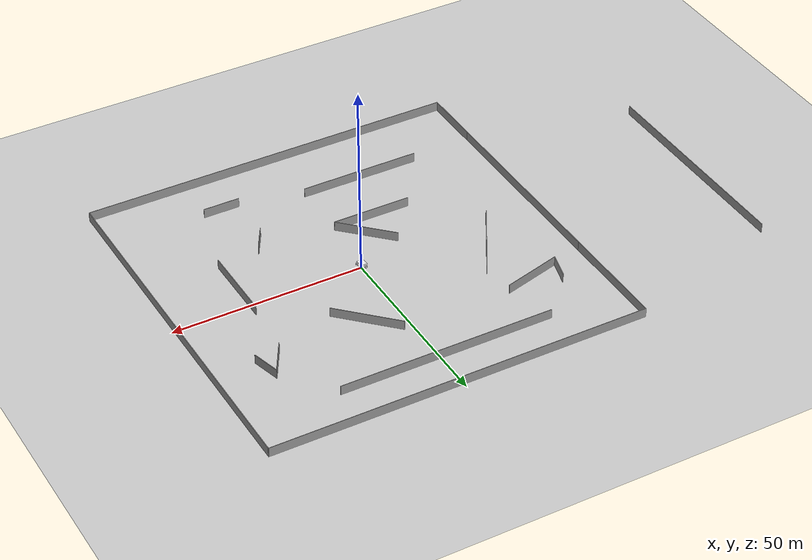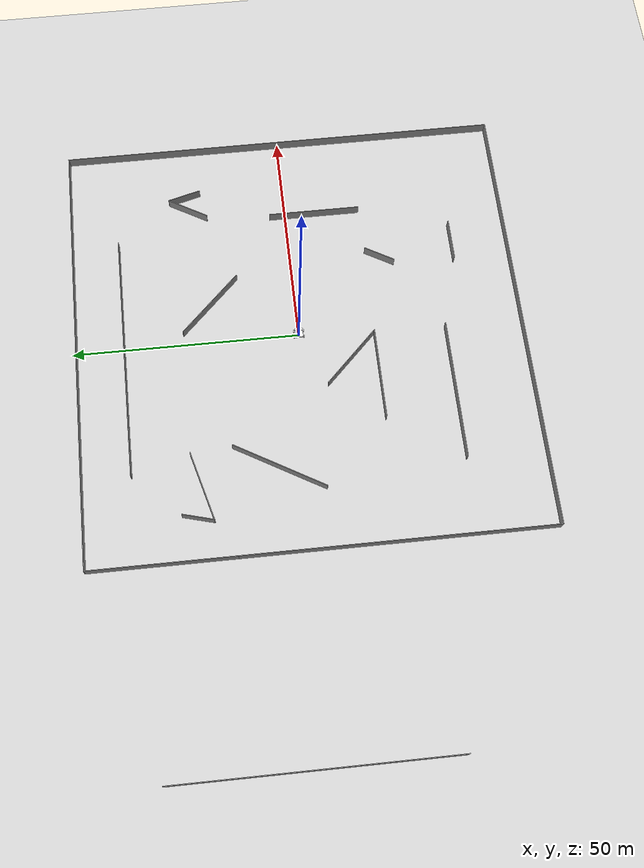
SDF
<sdf version="1.7">
 <world name="default">
  <light name="sun" type="directional">
   <pose>0 0 10 0 -0 0</pose>
   <diffuse>0.8 0.8 0.8 1</diffuse>
   <specular>0.2 0.2 0.2 1</specular>
   <attenuation>
    <range>1000</range>
    <constant>0.9</constant>
    <linear>0.01</linear>
    <quadratic>0.001</quadratic>
   </attenuation>
   <direction>-0.5 0.1 -0.9</direction>
   <spot><inner_angle>0</inner_angle><outer_angle>0</outer_angle><falloff>0</falloff></spot>
  </light>
  <model name="ground_plane">
   <static>1</static>
   <link name="link">
    <collision name="collision">
     <geometry><plane><normal>0 0 1</normal><size>100 100</size></plane></geometry>
     <surface><friction><ode><mu>100</mu><mu2>50</mu2></ode></friction></surface>
    </collision>
    <visual name="visual">
     <cast_shadows>0</cast_shadows>
     <geometry><plane><normal>0 0 1</normal><size>100 100</size></plane></geometry>
     <material>
      <script><uri>file://media/materials/scripts/gazebo.material</uri><name>Gazebo/Grey</name></script>
     </material>
    </visual>
   </link>
  </model>
  <gravity>0 0 -9.8</gravity>
  <magnetic_field>6e-06 2.3e-05 -4.2e-05</magnetic_field>
  <atmosphere type="adiabatic"/>
  <physics type="ode">
   <max_step_size>0.001</max_step_size>
   <real_time_factor>1</real_time_factor>
   <real_time_update_rate>1000</real_time_update_rate>
  </physics>
  <scene><ambient>0.4 0.4 0.4 1</ambient><background>0.7 0.7 0.7 1</background><shadows>1</shadows></scene>
  <audio><device>default</device></audio>
  <spherical_coordinates>
   <surface_model>EARTH_WGS84</surface_model>
   <latitude_deg>0</latitude_deg>
   <longitude_deg>0</longitude_deg>
   <elevation>0</elevation>
   <heading_deg>0</heading_deg>
  </spherical_coordinates>
  <model name="car">
   <link name="base_link">
    <inertial>
     <pose>1.32428 0.73996 0.124912 0 -0 0</pose>
     <mass>14637.3</mass>
     <inertia>
      <ixx>4036.66</ixx>
      <ixy>-194.61</ixy>
      <ixz>-481.364</ixz>
      <iyy>5981</iyy>
      <iyz>-18.3566</iyz>
      <izz>8818.39</izz>
     </inertia>
    </inertial>
    <collision name="base_link_collision">
     <geometry>
      <mesh>
       <scale>0.001 0.001 0.001</scale>
       <uri>file:///home/rhobtor/reactive/Reactive-Navegation/workspace_full_conected/install/car/share/car/meshes/base_link.stl</uri>
      </mesh>
     </geometry>
     <surface><friction><ode><mu>0.2</mu><mu2>0.2</mu2></ode></friction></surface>
    </collision>
    <collision name="base_link_fixed_joint_lump__suspension_front_right_1_collision_1">
     <geometry>
      <mesh>
       <scale>0.001 0.001 0.001</scale>
       <uri>file:///home/rhobtor/reactive/Reactive-Navegation/workspace_full_conected/install/car/share/car/meshes/suspension_front_right_1.stl</uri>
      </mesh>
     </geometry>
     <surface><friction><ode><mu>0.2</mu><mu2>0.2</mu2></ode></friction></surface>
    </collision>
    <collision name="base_link_fixed_joint_lump__direction_front_right_1_collision_2">
     <geometry>
      <mesh>
       <scale>0.001 0.001 0.001</scale>
       <uri>file:///home/rhobtor/reactive/Reactive-Navegation/workspace_full_conected/install/car/share/car/meshes/direction_front_right_1.stl</uri>
      </mesh>
     </geometry>
     <surface><friction><ode><mu>0.2</mu><mu2>0.2</mu2></ode></friction></surface>
    </collision>
    <collision name="base_link_fixed_joint_lump__suspension_front_left__1_collision_3">
     <geometry>
      <mesh>
       <scale>0.001 0.001 0.001</scale>
       <uri>file:///home/rhobtor/reactive/Reactive-Navegation/workspace_full_conected/install/car/share/car/meshes/suspension_front_left__1.stl</uri>
      </mesh>
     </geometry>
     <surface><friction><ode><mu>0.2</mu><mu2>0.2</mu2></ode></friction></surface>
    </collision>
    <collision name="base_link_fixed_joint_lump__direction_front_left_1_collision_4">
     <geometry>
      <mesh>
       <scale>0.001 0.001 0.001</scale>
       <uri>file:///home/rhobtor/reactive/Reactive-Navegation/workspace_full_conected/install/car/share/car/meshes/direction_front_left_1.stl</uri>
      </mesh>
     </geometry>
     <surface><friction><ode><mu>0.2</mu><mu2>0.2</mu2></ode></friction></surface>
    </collision>
    <collision name="base_link_fixed_joint_lump__suspension_back_right_1_collision_5">
     <geometry>
      <mesh>
       <scale>0.001 0.001 0.001</scale>
       <uri>file:///home/rhobtor/reactive/Reactive-Navegation/workspace_full_conected/install/car/share/car/meshes/suspension_back_right_1.stl</uri>
      </mesh>
     </geometry>
     <surface><friction><ode><mu>0.2</mu><mu2>0.2</mu2></ode></friction></surface>
    </collision>
    <collision name="base_link_fixed_joint_lump__direction_back_right_1_collision_6">
     <geometry>
      <mesh>
       <scale>0.001 0.001 0.001</scale>
       <uri>file:///home/rhobtor/reactive/Reactive-Navegation/workspace_full_conected/install/car/share/car/meshes/direction_back_right_1.stl</uri>
      </mesh>
     </geometry>
     <surface><friction><ode><mu>0.2</mu><mu2>0.2</mu2></ode></friction></surface>
    </collision>
    <collision name="base_link_fixed_joint_lump__suspension_back_left_1_collision_7">
     <geometry>
      <mesh>
       <scale>0.001 0.001 0.001</scale>
       <uri>file:///home/rhobtor/reactive/Reactive-Navegation/workspace_full_conected/install/car/share/car/meshes/suspension_back_left_1.stl</uri>
      </mesh>
     </geometry>
     <surface><friction><ode><mu>0.2</mu><mu2>0.2</mu2></ode></friction></surface>
    </collision>
    <collision name="base_link_fixed_joint_lump__direction_back_left_1_collision_8">
     <geometry>
      <mesh>
       <scale>0.001 0.001 0.001</scale>
       <uri>file:///home/rhobtor/reactive/Reactive-Navegation/workspace_full_conected/install/car/share/car/meshes/direction_back_left_1.stl</uri>
      </mesh>
     </geometry>
     <surface><friction><ode><mu>0.2</mu><mu2>0.2</mu2></ode></friction></surface>
    </collision>
    <collision name="base_link_fixed_joint_lump__chasis_1_collision_9">
     <geometry>
      <mesh>
       <scale>0.001 0.001 0.001</scale>
       <uri>file:///home/rhobtor/reactive/Reactive-Navegation/workspace_full_conected/install/car/share/car/meshes/chasis_1.stl</uri>
      </mesh>
     </geometry>
     <surface><friction><ode><mu>0.2</mu><mu2>0.2</mu2></ode></friction></surface>
    </collision>
    <collision name="base_link_fixed_joint_lump__Lidar_collision_10">
     <geometry>
      <mesh>
       <scale>0.001 0.001 0.001</scale>
       <uri>file:///home/rhobtor/reactive/Reactive-Navegation/workspace_full_conected/install/car/share/car/meshes/Lidar.stl</uri>
      </mesh>
     </geometry>
    </collision>
    <collision name="base_link_fixed_joint_lump__Camara_collision_11">
     <geometry>
      <mesh>
       <scale>0.001 0.001 0.001</scale>
       <uri>file:///home/rhobtor/reactive/Reactive-Navegation/workspace_full_conected/install/car/share/car/meshes/Camara.stl</uri>
      </mesh>
     </geometry>
    </collision>
    <visual name="base_link_visual">
     <geometry>
      <mesh>
       <scale>0.001 0.001 0.001</scale>
       <uri>file:///home/rhobtor/reactive/Reactive-Navegation/workspace_full_conected/install/car/share/car/meshes/base_link.stl</uri>
      </mesh>
     </geometry>
     <material>
      <script><name>Gazebo/White</name><uri>file://media/materials/scripts/gazebo.material</uri></script>
     </material>
    </visual>
    <visual name="base_link_fixed_joint_lump__suspension_front_right_1_visual_1">
     <geometry>
      <mesh>
       <scale>0.001 0.001 0.001</scale>
       <uri>file:///home/rhobtor/reactive/Reactive-Navegation/workspace_full_conected/install/car/share/car/meshes/suspension_front_right_1.stl</uri>
      </mesh>
     </geometry>
     <material>
      <script><name>Gazebo/White</name><uri>file://media/materials/scripts/gazebo.material</uri></script>
     </material>
    </visual>
    <visual name="base_link_fixed_joint_lump__direction_front_right_1_visual_2">
     <geometry>
      <mesh>
       <scale>0.001 0.001 0.001</scale>
       <uri>file:///home/rhobtor/reactive/Reactive-Navegation/workspace_full_conected/install/car/share/car/meshes/direction_front_right_1.stl</uri>
      </mesh>
     </geometry>
     <material>
      <script><name>Gazebo/White</name><uri>file://media/materials/scripts/gazebo.material</uri></script>
     </material>
    </visual>
    <visual name="base_link_fixed_joint_lump__suspension_front_left__1_visual_3">
     <geometry>
      <mesh>
       <scale>0.001 0.001 0.001</scale>
       <uri>file:///home/rhobtor/reactive/Reactive-Navegation/workspace_full_conected/install/car/share/car/meshes/suspension_front_left__1.stl</uri>
      </mesh>
     </geometry>
     <material>
      <script><name>Gazebo/White</name><uri>file://media/materials/scripts/gazebo.material</uri></script>
     </material>
    </visual>
    <visual name="base_link_fixed_joint_lump__direction_front_left_1_visual_4">
     <geometry>
      <mesh>
       <scale>0.001 0.001 0.001</scale>
       <uri>file:///home/rhobtor/reactive/Reactive-Navegation/workspace_full_conected/install/car/share/car/meshes/direction_front_left_1.stl</uri>
      </mesh>
     </geometry>
     <material>
      <script><name>Gazebo/White</name><uri>file://media/materials/scripts/gazebo.material</uri></script>
     </material>
    </visual>
    <visual name="base_link_fixed_joint_lump__suspension_back_right_1_visual_5">
     <geometry>
      <mesh>
       <scale>0.001 0.001 0.001</scale>
       <uri>file:///home/rhobtor/reactive/Reactive-Navegation/workspace_full_conected/install/car/share/car/meshes/suspension_back_right_1.stl</uri>
      </mesh>
     </geometry>
     <material>
      <script><name>Gazebo/White</name><uri>file://media/materials/scripts/gazebo.material</uri></script>
     </material>
    </visual>
    <visual name="base_link_fixed_joint_lump__direction_back_right_1_visual_6">
     <geometry>
      <mesh>
       <scale>0.001 0.001 0.001</scale>
       <uri>file:///home/rhobtor/reactive/Reactive-Navegation/workspace_full_conected/install/car/share/car/meshes/direction_back_right_1.stl</uri>
      </mesh>
     </geometry>
     <material>
      <script><name>Gazebo/White</name><uri>file://media/materials/scripts/gazebo.material</uri></script>
     </material>
    </visual>
    <visual name="base_link_fixed_joint_lump__suspension_back_left_1_visual_7">
     <geometry>
      <mesh>
       <scale>0.001 0.001 0.001</scale>
       <uri>file:///home/rhobtor/reactive/Reactive-Navegation/workspace_full_conected/install/car/share/car/meshes/suspension_back_left_1.stl</uri>
      </mesh>
     </geometry>
     <material>
      <script><name>Gazebo/White</name><uri>file://media/materials/scripts/gazebo.material</uri></script>
     </material>
    </visual>
    <visual name="base_link_fixed_joint_lump__direction_back_left_1_visual_8">
     <geometry>
      <mesh>
       <scale>0.001 0.001 0.001</scale>
       <uri>file:///home/rhobtor/reactive/Reactive-Navegation/workspace_full_conected/install/car/share/car/meshes/direction_back_left_1.stl</uri>
      </mesh>
     </geometry>
     <material>
      <script><name>Gazebo/White</name><uri>file://media/materials/scripts/gazebo.material</uri></script>
     </material>
    </visual>
    <visual name="base_link_fixed_joint_lump__chasis_1_visual_9">
     <geometry>
      <mesh>
       <scale>0.001 0.001 0.001</scale>
       <uri>file:///home/rhobtor/reactive/Reactive-Navegation/workspace_full_conected/install/car/share/car/meshes/chasis_1.stl</uri>
      </mesh>
     </geometry>
     <material>
      <script><name>Gazebo/White</name><uri>file://media/materials/scripts/gazebo.material</uri></script>
     </material>
    </visual>
    <visual name="base_link_fixed_joint_lump__Lidar_visual_10">
     <geometry>
      <mesh>
       <scale>0.001 0.001 0.001</scale>
       <uri>file:///home/rhobtor/reactive/Reactive-Navegation/workspace_full_conected/install/car/share/car/meshes/Lidar.stl</uri>
      </mesh>
     </geometry>
    </visual>
    <visual name="base_link_fixed_joint_lump__Camara_visual_11">
     <geometry>
      <mesh>
       <scale>0.001 0.001 0.001</scale>
       <uri>file:///home/rhobtor/reactive/Reactive-Navegation/workspace_full_conected/install/car/share/car/meshes/Camara.stl</uri>
      </mesh>
     </geometry>
    </visual>
    <self_collide>1</self_collide>
    <self_collide>1</self_collide>
    <self_collide>1</self_collide>
    <self_collide>1</self_collide>
    <self_collide>1</self_collide>
    <self_collide>1</self_collide>
    <self_collide>1</self_collide>
    <self_collide>1</self_collide>
    <self_collide>1</self_collide>
    <self_collide>1</self_collide>
    <sensor name="Lidar" type="gpu_ray">
     <visualize>0</visualize>
     <update_rate>10</update_rate>
     <ray>
      <scan>
       <horizontal>
        <samples>360</samples>
        <min_angle>-3.14</min_angle>
        <max_angle>3.14</max_angle>
        <resolution>1</resolution>
       </horizontal>
       <vertical><samples>16</samples><min_angle>-0.523599</min_angle><max_angle>0.523599</max_angle></vertical>
      </scan>
      <range><min>0.3</min><max>12</max><resolution>0.01</resolution></range>
      <noise><type>gaussian</type><mean>0</mean><stddev>0.01</stddev></noise>
     </ray>
     <plugin name="lidar_controller" filename="libgazebo_ros_ray_sensor.so">
      <ros><argument>use_sim_time:=true</argument><argument>~/out:=/scan_cloud</argument></ros>
      <frame_name>Lidar</frame_name>
      <output_type>sensor_msgs/PointCloud2</output_type>
     </plugin>
     <pose>1.85 0.75 0.65 0 -0 0</pose>
    </sensor>
    <sensor name="depth_camera" type="depth">
     <visualize>1</visualize>
     <update_rate>100</update_rate>
     <camera>
      <horizontal_fov>2</horizontal_fov>
      <image><width>640</width><height>480</height><format>R8G8B8</format></image>
      <clip><near>0.1</near><far>50</far></clip>
     </camera>
     <plugin name="depth_camera_controller" filename="libgazebo_ros_camera.so">
      <ros><argument>use_sim_time:=true</argument></ros>
      <frame_name>camera_optical_frame</frame_name>
      <publish_tf>1</publish_tf>
     </plugin>
     <pose>2.17508 0.75 0.43922 0 -0 0</pose>
    </sensor>
   </link>
   <joint name="front_right_wheel_joint" type="revolute">
    <pose relative_to="base_link">1.925 -0.25 -0.45 0 -0 0</pose>
    <parent>base_link</parent>
    <child>rim_front_right_1</child>
    <axis>
     <xyz>0 -1 0</xyz>
     <limit><lower>-1e+16</lower><upper>1e+16</upper></limit>
     <dynamics><spring_reference>0</spring_reference><spring_stiffness>0</spring_stiffness></dynamics>
    </axis>
   </joint>
   <link name="rim_front_right_1">
    <pose relative_to="front_right_wheel_joint">0 0 0 0 -0 0</pose>
    <inertial>
     <pose>-0 -0.04659 -1e-06 0 -0 0</pose>
     <mass>108.077</mass>
     <inertia>
      <ixx>4.92257</ixx>
      <ixy>-9.53454e-07</ixy>
      <ixz>-3.00006e-06</ixz>
      <iyy>8.91914</iyy>
      <iyz>-2.71445e-06</iyz>
      <izz>4.92257</izz>
     </inertia>
    </inertial>
    <collision name="rim_front_right_1_collision">
     <pose>-1.925 0.25 0.45 0 -0 0</pose>
     <geometry>
      <mesh>
       <scale>0.001 0.001 0.001</scale>
       <uri>file:///home/rhobtor/reactive/Reactive-Navegation/workspace_full_conected/install/car/share/car/meshes/rim_front_right_1.stl</uri>
      </mesh>
     </geometry>
     <surface><friction><ode><mu>5</mu><mu2>5</mu2></ode></friction></surface>
    </collision>
    <collision name="rim_front_right_1_fixed_joint_lump__tire_front_right_1_collision_1">
     <pose>-1.925 0.25 0.45 0 -0 0</pose>
     <geometry>
      <mesh>
       <scale>0.001 0.001 0.001</scale>
       <uri>file:///home/rhobtor/reactive/Reactive-Navegation/workspace_full_conected/install/car/share/car/meshes/tire_front_right_1.stl</uri>
      </mesh>
     </geometry>
     <surface><friction><ode><mu>5</mu><mu2>5</mu2></ode></friction></surface>
    </collision>
    <visual name="rim_front_right_1_visual">
     <pose>-1.925 0.25 0.45 0 -0 0</pose>
     <geometry>
      <mesh>
       <scale>0.001 0.001 0.001</scale>
       <uri>file:///home/rhobtor/reactive/Reactive-Navegation/workspace_full_conected/install/car/share/car/meshes/rim_front_right_1.stl</uri>
      </mesh>
     </geometry>
     <material>
      <script><name>Gazebo/White</name><uri>file://media/materials/scripts/gazebo.material</uri></script>
     </material>
    </visual>
    <visual name="rim_front_right_1_fixed_joint_lump__tire_front_right_1_visual_1">
     <pose>-1.925 0.25 0.45 0 -0 0</pose>
     <geometry>
      <mesh>
       <scale>0.001 0.001 0.001</scale>
       <uri>file:///home/rhobtor/reactive/Reactive-Navegation/workspace_full_conected/install/car/share/car/meshes/tire_front_right_1.stl</uri>
      </mesh>
     </geometry>
     <material>
      <script><name>Gazebo/White</name><uri>file://media/materials/scripts/gazebo.material</uri></script>
     </material>
    </visual>
    <self_collide>1</self_collide>
    <self_collide>1</self_collide>
   </link>
   <joint name="front_left_wheel_joint" type="revolute">
    <pose relative_to="base_link">1.925 1.75 -0.45 0 -0 0</pose>
    <parent>base_link</parent>
    <child>rim_front_left_1</child>
    <axis>
     <xyz>0 1 0</xyz>
     <limit><lower>-1e+16</lower><upper>1e+16</upper></limit>
     <dynamics><spring_reference>0</spring_reference><spring_stiffness>0</spring_stiffness></dynamics>
    </axis>
   </joint>
   <link name="rim_front_left_1">
    <pose relative_to="front_left_wheel_joint">0 0 0 0 -0 0</pose>
    <inertial>
     <pose>-0 0.04659 1e-06 0 -0 0</pose>
     <mass>108.077</mass>
     <inertia>
      <ixx>4.92257</ixx>
      <ixy>9.53454e-07</ixy>
      <ixz>3.00006e-06</ixz>
      <iyy>8.91914</iyy>
      <iyz>-2.71445e-06</iyz>
      <izz>4.92257</izz>
     </inertia>
    </inertial>
    <collision name="rim_front_left_1_collision">
     <pose>-1.925 -1.75 0.45 0 -0 0</pose>
     <geometry>
      <mesh>
       <scale>0.001 0.001 0.001</scale>
       <uri>file:///home/rhobtor/reactive/Reactive-Navegation/workspace_full_conected/install/car/share/car/meshes/rim_front_left_1.stl</uri>
      </mesh>
     </geometry>
     <surface><friction><ode><mu>5</mu><mu2>5</mu2></ode></friction></surface>
    </collision>
    <collision name="rim_front_left_1_fixed_joint_lump__tire_front_left_1_collision_1">
     <pose>-1.925 -1.75 0.45 0 -0 0</pose>
     <geometry>
      <mesh>
       <scale>0.001 0.001 0.001</scale>
       <uri>file:///home/rhobtor/reactive/Reactive-Navegation/workspace_full_conected/install/car/share/car/meshes/tire_front_left_1.stl</uri>
      </mesh>
     </geometry>
     <surface><friction><ode><mu>5</mu><mu2>5</mu2></ode></friction></surface>
    </collision>
    <visual name="rim_front_left_1_visual">
     <pose>-1.925 -1.75 0.45 0 -0 0</pose>
     <geometry>
      <mesh>
       <scale>0.001 0.001 0.001</scale>
       <uri>file:///home/rhobtor/reactive/Reactive-Navegation/workspace_full_conected/install/car/share/car/meshes/rim_front_left_1.stl</uri>
      </mesh>
     </geometry>
     <material>
      <script><name>Gazebo/White</name><uri>file://media/materials/scripts/gazebo.material</uri></script>
     </material>
    </visual>
    <visual name="rim_front_left_1_fixed_joint_lump__tire_front_left_1_visual_1">
     <pose>-1.925 -1.75 0.45 0 -0 0</pose>
     <geometry>
      <mesh>
       <scale>0.001 0.001 0.001</scale>
       <uri>file:///home/rhobtor/reactive/Reactive-Navegation/workspace_full_conected/install/car/share/car/meshes/tire_front_left_1.stl</uri>
      </mesh>
     </geometry>
     <material>
      <script><name>Gazebo/White</name><uri>file://media/materials/scripts/gazebo.material</uri></script>
     </material>
    </visual>
    <self_collide>1</self_collide>
    <self_collide>1</self_collide>
   </link>
   <joint name="back_right_wheel_joint" type="revolute">
    <pose relative_to="base_link">0.58 -0.25 -0.45 0 -0 0</pose>
    <parent>base_link</parent>
    <child>rim_back_right_1</child>
    <axis>
     <xyz>0 -1 0</xyz>
     <limit><lower>-1e+16</lower><upper>1e+16</upper></limit>
     <dynamics><spring_reference>0</spring_reference><spring_stiffness>0</spring_stiffness></dynamics>
    </axis>
   </joint>
   <link name="rim_back_right_1">
    <pose relative_to="back_right_wheel_joint">0 0 0 0 -0 0</pose>
    <inertial>
     <pose>-0 -0.04659 -1e-06 0 -0 0</pose>
     <mass>108.077</mass>
     <inertia>
      <ixx>4.92257</ixx>
      <ixy>-9.53454e-07</ixy>
      <ixz>-3.00006e-06</ixz>
      <iyy>8.91914</iyy>
      <iyz>-2.71445e-06</iyz>
      <izz>4.92257</izz>
     </inertia>
    </inertial>
    <collision name="rim_back_right_1_collision">
     <pose>-0.58 0.25 0.45 0 -0 0</pose>
     <geometry>
      <mesh>
       <scale>0.001 0.001 0.001</scale>
       <uri>file:///home/rhobtor/reactive/Reactive-Navegation/workspace_full_conected/install/car/share/car/meshes/rim_back_right_1.stl</uri>
      </mesh>
     </geometry>
     <surface><friction><ode><mu>5</mu><mu2>5</mu2></ode></friction></surface>
    </collision>
    <collision name="rim_back_right_1_fixed_joint_lump__tire_back_right_1_collision_1">
     <pose>-0.58 0.25 0.45 0 -0 0</pose>
     <geometry>
      <mesh>
       <scale>0.001 0.001 0.001</scale>
       <uri>file:///home/rhobtor/reactive/Reactive-Navegation/workspace_full_conected/install/car/share/car/meshes/tire_back_right_1.stl</uri>
      </mesh>
     </geometry>
     <surface><friction><ode><mu>5</mu><mu2>5</mu2></ode></friction></surface>
    </collision>
    <visual name="rim_back_right_1_visual">
     <pose>-0.58 0.25 0.45 0 -0 0</pose>
     <geometry>
      <mesh>
       <scale>0.001 0.001 0.001</scale>
       <uri>file:///home/rhobtor/reactive/Reactive-Navegation/workspace_full_conected/install/car/share/car/meshes/rim_back_right_1.stl</uri>
      </mesh>
     </geometry>
     <material>
      <script><name>Gazebo/White</name><uri>file://media/materials/scripts/gazebo.material</uri></script>
     </material>
    </visual>
    <visual name="rim_back_right_1_fixed_joint_lump__tire_back_right_1_visual_1">
     <pose>-0.58 0.25 0.45 0 -0 0</pose>
     <geometry>
      <mesh>
       <scale>0.001 0.001 0.001</scale>
       <uri>file:///home/rhobtor/reactive/Reactive-Navegation/workspace_full_conected/install/car/share/car/meshes/tire_back_right_1.stl</uri>
      </mesh>
     </geometry>
     <material>
      <script><name>Gazebo/White</name><uri>file://media/materials/scripts/gazebo.material</uri></script>
     </material>
    </visual>
    <self_collide>1</self_collide>
    <self_collide>1</self_collide>
   </link>
   <joint name="back_left_wheel_joint" type="revolute">
    <pose relative_to="base_link">0.58 1.75 -0.45 0 -0 0</pose>
    <parent>base_link</parent>
    <child>rim_back_left_1</child>
    <axis>
     <xyz>0 1 0</xyz>
     <limit><lower>-1e+16</lower><upper>1e+16</upper></limit>
     <dynamics><spring_reference>0</spring_reference><spring_stiffness>0</spring_stiffness></dynamics>
    </axis>
   </joint>
   <link name="rim_back_left_1">
    <pose relative_to="back_left_wheel_joint">0 0 0 0 -0 0</pose>
    <inertial>
     <pose>-0 0.04659 1e-06 0 -0 0</pose>
     <mass>108.077</mass>
     <inertia>
      <ixx>4.92257</ixx>
      <ixy>9.53454e-07</ixy>
      <ixz>3.00006e-06</ixz>
      <iyy>8.91914</iyy>
      <iyz>-2.71445e-06</iyz>
      <izz>4.92257</izz>
     </inertia>
    </inertial>
    <collision name="rim_back_left_1_collision">
     <pose>-0.58 -1.75 0.45 0 -0 0</pose>
     <geometry>
      <mesh>
       <scale>0.001 0.001 0.001</scale>
       <uri>file:///home/rhobtor/reactive/Reactive-Navegation/workspace_full_conected/install/car/share/car/meshes/rim_back_left_1.stl</uri>
      </mesh>
     </geometry>
     <surface><friction><ode><mu>5</mu><mu2>5</mu2></ode></friction></surface>
    </collision>
    <collision name="rim_back_left_1_fixed_joint_lump__tire_back_left_1_collision_1">
     <pose>-0.58 -1.75 0.45 0 -0 0</pose>
     <geometry>
      <mesh>
       <scale>0.001 0.001 0.001</scale>
       <uri>file:///home/rhobtor/reactive/Reactive-Navegation/workspace_full_conected/install/car/share/car/meshes/tire_back_left_1.stl</uri>
      </mesh>
     </geometry>
     <surface><friction><ode><mu>5</mu><mu2>5</mu2></ode></friction></surface>
    </collision>
    <visual name="rim_back_left_1_visual">
     <pose>-0.58 -1.75 0.45 0 -0 0</pose>
     <geometry>
      <mesh>
       <scale>0.001 0.001 0.001</scale>
       <uri>file:///home/rhobtor/reactive/Reactive-Navegation/workspace_full_conected/install/car/share/car/meshes/rim_back_left_1.stl</uri>
      </mesh>
     </geometry>
     <material>
      <script><name>Gazebo/White</name><uri>file://media/materials/scripts/gazebo.material</uri></script>
     </material>
    </visual>
    <visual name="rim_back_left_1_fixed_joint_lump__tire_back_left_1_visual_1">
     <pose>-0.58 -1.75 0.45 0 -0 0</pose>
     <geometry>
      <mesh>
       <scale>0.001 0.001 0.001</scale>
       <uri>file:///home/rhobtor/reactive/Reactive-Navegation/workspace_full_conected/install/car/share/car/meshes/tire_back_left_1.stl</uri>
      </mesh>
     </geometry>
     <material>
      <script><name>Gazebo/White</name><uri>file://media/materials/scripts/gazebo.material</uri></script>
     </material>
    </visual>
    <self_collide>1</self_collide>
    <self_collide>1</self_collide>
   </link>
   <plugin name="control" filename="libgazebo_ros2_control.so"/>
   <plugin name="imu_controller" filename="libhector_gazebo_ros_imu.so">
    <robotNamespace>car</robotNamespace>
    <updateRate>50.0</updateRate>
    <bodyName>base_link</bodyName>
    <topicName>imu/data</topicName>
    <accelDrift>0.005 0.005 0.005</accelDrift>
    <accelGaussianNoise>0.005 0.005 0.005</accelGaussianNoise>
    <rateDrift>0.005 0.005 0.005</rateDrift>
    <rateGaussianNoise>0.005 0.005 0.005</rateGaussianNoise>
    <headingDrift>0.005</headingDrift>
    <headingGaussianNoise>0.005</headingGaussianNoise>
   </plugin>
   <plugin name="gps_controller" filename="libhector_gazebo_ros_gps.so">
    <robotNamespace>car</robotNamespace>
    <updateRate>50</updateRate>
    <bodyName>base_link</bodyName>
    <frameId>base_link</frameId>
    <topicName>navsat/fix</topicName>
    <velocityTopicName>navsat/vel</velocityTopicName>
    <referenceLatitude>49.9</referenceLatitude>
    <referenceLongitude>8.9</referenceLongitude>
    <referenceHeading>0</referenceHeading>
    <referenceAltitude>0</referenceAltitude>
    <drift>0.0001 0.0001 0.0001</drift>
   </plugin>
   <plugin name="gazebo_ros_diff_drive_multi_wheel" filename="libdrive_plugin.so">
    <robotNamespace>/car</robotNamespace>
    <leftJoints>front_left_wheel_joint back_left_wheel_joint</leftJoints>
    <rightJoints>front_right_wheel_joint back_right_wheel_joint</rightJoints>
    <wheelSeparation>0.34</wheelSeparation>
    <wheelDiameter>0.15</wheelDiameter>
    <torque>5.0</torque>
    <commandTopic>cmd_vel</commandTopic>
    <odometryTopic>odom</odometryTopic>
    <odometryFrame>odom</odometryFrame>
    <robotBaseFrame>base_link</robotBaseFrame>
    <updateRate>100</updateRate>
    <publishOdometryTf>1</publishOdometryTf>
    <publishOdometryMsg>1</publishOdometryMsg>
    <lidarLink>lidar_footprint</lidarLink>
    <lidarPose><x>0.6</x><y>0.0</y><z>1.05</z></lidarPose>
   </plugin>
   <static>0</static>
   <plugin name="joint_state_publisher_plugin" filename="libjoints_plugin.so">
    <robotNamespace>car</robotNamespace>
    <updateRate>50.0</updateRate>
   </plugin>
   <pose>0.004453 0.01916 0.819671 0 -3e-06 0.000334</pose>
  </model>
  <model name="World_simple_objects">
   <pose>-21.2576 -0.244011 0 0 -0 0</pose>
   <link name="Wall_11">
    <collision name="Wall_11_Collision">
     <geometry><box><size>31.25 0.15 2.5</size></box></geometry>
     <pose>0 0 1.25 0 -0 0</pose>
    </collision>
    <visual name="Wall_11_Visual">
     <pose>0 0 1.25 0 -0 0</pose>
     <geometry><box><size>31.25 0.15 2.5</size></box></geometry>
     <material>
      <script><uri>file://media/materials/scripts/gazebo.material</uri><name>Gazebo/Grey</name></script>
      <ambient>1 1 1 1</ambient>
     </material>
     <meta><layer>0</layer></meta>
    </visual>
    <pose>4.37429 -32.0702 0 0 -0 3.14159</pose>
   </link>
   <link name="Wall_13">
    <collision name="Wall_13_Collision">
     <geometry><box><size>55.75 0.15 2.5</size></box></geometry>
     <pose>0 0 1.25 0 -0 0</pose>
    </collision>
    <visual name="Wall_13_Visual">
     <pose>0 0 1.25 0 -0 0</pose>
     <geometry><box><size>55.75 0.15 2.5</size></box></geometry>
     <material>
      <script><uri>file://media/materials/scripts/gazebo.material</uri><name>Gazebo/Grey</name></script>
      <ambient>1 1 1 1</ambient>
     </material>
     <meta><layer>0</layer></meta>
    </visual>
    <pose>19.414 38.7055 0 0 -0 0</pose>
   </link>
   <link name="Wall_15">
    <collision name="Wall_15_Collision">
     <geometry><box><size>20.5 0.15 2.5</size></box></geometry>
     <pose>0 0 1.25 0 -0 0</pose>
    </collision>
    <visual name="Wall_15_Visual">
     <pose>0 0 1.25 0 -0 0</pose>
     <geometry><box><size>20.5 0.15 2.5</size></box></geometry>
     <material>
      <script><uri>file://media/materials/scripts/gazebo.material</uri><name>Gazebo/Grey</name></script>
      <ambient>1 1 1 1</ambient>
     </material>
     <meta><layer>0</layer></meta>
    </visual>
    <pose>51.1973 -6.36355 0 0 -0 -1.5708</pose>
   </link>
   <link name="Wall_17">
    <collision name="Wall_17_Collision">
     <geometry><box><size>22 0.15 2.5</size></box></geometry>
     <pose>0 0 1.25 0 -0 0</pose>
    </collision>
    <visual name="Wall_17_Visual">
     <pose>0 0 1.25 0 -0 0</pose>
     <geometry><box><size>22 0.15 2.5</size></box></geometry>
     <material>
      <script><uri>file://media/materials/scripts/gazebo.material</uri><name>Gazebo/Grey</name></script>
      <ambient>1 1 1 1</ambient>
     </material>
     <meta><layer>0</layer></meta>
    </visual>
    <pose>-9.23985 7.51771 0 0 -0 -2.0944</pose>
   </link>
   <link name="Wall_19">
    <collision name="Wall_19_Collision">
     <geometry><box><size>18.25 0.15 2.5</size></box></geometry>
     <pose>0 0 1.25 0 -0 0</pose>
    </collision>
    <visual name="Wall_19_Visual">
     <pose>0 0 1.25 0 -0 0</pose>
     <geometry><box><size>18.25 0.15 2.5</size></box></geometry>
     <material>
      <script><uri>file://media/materials/scripts/gazebo.material</uri><name>Gazebo/Grey</name></script>
      <ambient>1 1 1 1</ambient>
     </material>
     <meta><layer>0</layer></meta>
    </visual>
    <pose>29.9571 19.168 0 0 -0 -0.785398</pose>
   </link>
   <link name="Wall_2">
    <collision name="Wall_2_Collision">
     <geometry><box><size>58.75 0.15 2.5</size></box></geometry>
     <pose>0 0 1.25 0 -0 0</pose>
    </collision>
    <visual name="Wall_2_Visual">
     <pose>0 0 1.25 0 -0 0</pose>
     <geometry><box><size>58.75 0.15 2.5</size></box></geometry>
     <material>
      <script><uri>file://media/materials/scripts/gazebo.material</uri><name>Gazebo/Grey</name></script>
      <ambient>1 1 1 1</ambient>
     </material>
     <meta><layer>0</layer></meta>
    </visual>
    <pose>-70.5807 6.45107 0 0 -0 1.5708</pose>
   </link>
   <link name="Wall_21">
    <collision name="Wall_21_Collision">
     <geometry><box><size>9.5 0.15 2.5</size></box></geometry>
     <pose>0 0 1.25 0 -0 0</pose>
    </collision>
    <visual name="Wall_21_Visual">
     <pose>0 0 1.25 0 -0 0</pose>
     <geometry><box><size>9.5 0.15 2.5</size></box></geometry>
     <material>
      <script><uri>file://media/materials/scripts/gazebo.material</uri><name>Gazebo/Grey</name></script>
      <ambient>1 1 1 1</ambient>
     </material>
     <meta><layer>0</layer></meta>
    </visual>
    <pose>40.744 -36.5531 0 0 -0 3.14159</pose>
   </link>
   <link name="Wall_23">
    <collision name="Wall_23_Collision">
     <geometry><box><size>7.5 0.15 2.5</size></box></geometry>
     <pose>0 0 1.25 0 -0 0</pose>
    </collision>
    <visual name="Wall_23_Visual">
     <pose>0 0 1.25 0 -0 0</pose>
     <geometry><box><size>7.5 0.15 2.5</size></box></geometry>
     <material>
      <script><uri>file://media/materials/scripts/gazebo.material</uri><name>Gazebo/Grey</name></script>
      <ambient>1 1 1 1</ambient>
     </material>
     <meta><layer>0</layer></meta>
    </visual>
    <pose>58.1752 23.0028 0 0 -0 1.8326</pose>
   </link>
   <link name="Wall_24">
    <collision name="Wall_24_Collision">
     <geometry><box><size>9.75 0.15 2.5</size></box></geometry>
     <pose>0 0 1.25 0 -0 0</pose>
    </collision>
    <visual name="Wall_24_Visual">
     <pose>0 0 1.25 0 -0 0</pose>
     <geometry><box><size>9.75 0.15 2.5</size></box></geometry>
     <material>
      <script><uri>file://media/materials/scripts/gazebo.material</uri><name>Gazebo/Grey</name></script>
      <ambient>1 1 1 1</ambient>
     </material>
     <meta><layer>0</layer></meta>
    </visual>
    <pose>54.824 22.3956 0 0 -0 -2.0944</pose>
   </link>
   <link name="Wall_26">
    <collision name="Wall_26_Collision">
     <geometry><box><size>16.25 0.15 2.5</size></box></geometry>
     <pose>0 0 1.25 0 -0 0</pose>
    </collision>
    <visual name="Wall_26_Visual">
     <pose>0 0 1.25 0 -0 0</pose>
     <geometry><box><size>16.25 0.15 2.5</size></box></geometry>
     <material>
      <script><uri>file://media/materials/scripts/gazebo.material</uri><name>Gazebo/Grey</name></script>
      <ambient>1 1 1 1</ambient>
     </material>
     <meta><layer>0</layer></meta>
    </visual>
    <pose>14.152 -10.5706 0 0 -0 -0.785398</pose>
   </link>
   <link name="Wall_27">
    <collision name="Wall_27_Collision">
     <geometry><box><size>20.5 0.15 2.5</size></box></geometry>
     <pose>0 0 1.25 0 -0 0</pose>
    </collision>
    <visual name="Wall_27_Visual">
     <pose>0 0 1.25 0 -0 0</pose>
     <geometry><box><size>20.5 0.15 2.5</size></box></geometry>
     <material>
      <script><uri>file://media/materials/scripts/gazebo.material</uri><name>Gazebo/Grey</name></script>
      <ambient>1 1 1 1</ambient>
     </material>
     <meta><layer>0</layer></meta>
    </visual>
    <pose>9.66918 -16.2628 0 0 -0 3.14159</pose>
   </link>
   <link name="Wall_29">
    <collision name="Wall_29_Collision">
     <geometry><box><size>7.25 0.15 2.5</size></box></geometry>
     <pose>0 0 1.25 0 -0 0</pose>
    </collision>
    <visual name="Wall_29_Visual">
     <pose>0 0 1.25 0 -0 0</pose>
     <geometry><box><size>7.25 0.15 2.5</size></box></geometry>
     <material>
      <script><uri>file://media/materials/scripts/gazebo.material</uri><name>Gazebo/Grey</name></script>
      <ambient>1 1 1 1</ambient>
     </material>
     <meta><layer>0</layer></meta>
    </visual>
    <pose>38.5737 -19.8379 0 0 -0 1.0472</pose>
   </link>
   <link name="Wall_31">
    <collision name="Wall_31_Collision">
     <geometry><box><size>7 0.15 2.5</size></box></geometry>
     <pose>0 0 1.25 0 -0 0</pose>
    </collision>
    <visual name="Wall_31_Visual">
     <pose>0 0 1.25 0 -0 0</pose>
     <geometry><box><size>7 0.15 2.5</size></box></geometry>
     <material>
      <script><uri>file://media/materials/scripts/gazebo.material</uri><name>Gazebo/Grey</name></script>
      <ambient>1 1 1 1</ambient>
     </material>
     <meta><layer>0</layer></meta>
    </visual>
    <pose>-18.7619 25.3048 0 0 -0 -1.8326</pose>
   </link>
   <link name="Wall_32">
    <collision name="Wall_32_Collision">
     <geometry><box><size>15.75 0.15 2.5</size></box></geometry>
     <pose>0 0 1.25 0 -0 0</pose>
    </collision>
    <visual name="Wall_32_Visual">
     <pose>0 0 1.25 0 -0 0</pose>
     <geometry><box><size>15.75 0.15 2.5</size></box></geometry>
     <material>
      <script><uri>file://media/materials/scripts/gazebo.material</uri><name>Gazebo/Grey</name></script>
      <ambient>1 1 1 1</ambient>
     </material>
     <meta><layer>0</layer></meta>
    </visual>
    <pose>-12.1141 24.0153 0 0 -0 0.261799</pose>
   </link>
   <link name="Wall_4">
    <collision name="Wall_4_Collision">
     <geometry><box><size>53.5 0.15 2.5</size></box></geometry>
     <pose>0 0 1.25 0 -0 0</pose>
    </collision>
    <visual name="Wall_4_Visual">
     <pose>0 0 1.25 0 -0 0</pose>
     <geometry><box><size>53.5 0.15 2.5</size></box></geometry>
     <material>
      <script><uri>file://media/materials/scripts/gazebo.material</uri><name>Gazebo/Grey</name></script>
      <ambient>1 1 1 1</ambient>
     </material>
     <meta><layer>0</layer></meta>
    </visual>
    <pose>-27.7692 -6.9 0 0 -0 -1.5708</pose>
   </link>
   <link name="Wall_5">
    <collision name="Wall_5_Collision">
     <geometry><box><size>15.75 0.15 2.5</size></box></geometry>
     <pose>0 0 1.25 0 -0 0</pose>
    </collision>
    <visual name="Wall_5_Visual">
     <pose>0 0 1.25 0 -0 0</pose>
     <geometry><box><size>15.75 0.15 2.5</size></box></geometry>
     <material>
      <script><uri>file://media/materials/scripts/gazebo.material</uri><name>Gazebo/Grey</name></script>
      <ambient>1 1 1 1</ambient>
     </material>
     <meta><layer>0</layer></meta>
    </visual>
    <pose>-27.7692 -41.375 0 0 -0 -1.5708</pose>
   </link>
   <link name="Wall_6">
    <collision name="Wall_6_Collision">
     <geometry><box><size>98.5 0.15 2.5</size></box></geometry>
     <pose>0 0 1.25 0 -0 0</pose>
    </collision>
    <visual name="Wall_6_Visual">
     <pose>0 0 1.25 0 -0 0</pose>
     <geometry><box><size>98.5 0.15 2.5</size></box></geometry>
     <material>
      <script><uri>file://media/materials/scripts/gazebo.material</uri><name>Gazebo/Grey</name></script>
      <ambient>1 1 1 1</ambient>
     </material>
     <meta><layer>0</layer></meta>
    </visual>
    <pose>21.4058 -49.175 0 0 -0 0</pose>
   </link>
   <link name="Wall_7">
    <collision name="Wall_7_Collision">
     <geometry><box><size>98.5 0.15 2.5</size></box></geometry>
     <pose>0 0 1.25 0 -0 0</pose>
    </collision>
    <visual name="Wall_7_Visual">
     <pose>0 0 1.25 0 -0 0</pose>
     <geometry><box><size>98.5 0.15 2.5</size></box></geometry>
     <material>
      <script><uri>file://media/materials/scripts/gazebo.material</uri><name>Gazebo/Grey</name></script>
      <ambient>1 1 1 1</ambient>
     </material>
     <meta><layer>0</layer></meta>
    </visual>
    <pose>70.5807 -1e-06 0 0 -0 1.5708</pose>
   </link>
   <link name="Wall_8">
    <collision name="Wall_8_Collision">
     <geometry><box><size>98.5 0.15 2.5</size></box></geometry>
     <pose>0 0 1.25 0 -0 0</pose>
    </collision>
    <visual name="Wall_8_Visual">
     <pose>0 0 1.25 0 -0 0</pose>
     <geometry><box><size>98.5 0.15 2.5</size></box></geometry>
     <material>
      <script><uri>file://media/materials/scripts/gazebo.material</uri><name>Gazebo/Grey</name></script>
      <ambient>1 1 1 1</ambient>
     </material>
     <meta><layer>0</layer></meta>
    </visual>
    <pose>21.4058 49.175 0 0 -0 3.14159</pose>
   </link>
   <link name="Wall_9">
    <collision name="Wall_9_Collision">
     <geometry><box><size>31.5 0.15 2.5</size></box></geometry>
     <pose>0 0 1.25 0 -0 0</pose>
    </collision>
    <visual name="Wall_9_Visual">
     <pose>0 0 1.25 0 -0 0</pose>
     <geometry><box><size>31.5 0.15 2.5</size></box></geometry>
     <material>
      <script><uri>file://media/materials/scripts/gazebo.material</uri><name>Gazebo/Grey</name></script>
      <ambient>1 1 1 1</ambient>
     </material>
     <meta><layer>0</layer></meta>
    </visual>
    <pose>-27.7692 33.5 0 0 -0 -1.5708</pose>
   </link>
   <static>1</static>
  </model>
 </world>
</sdf>
